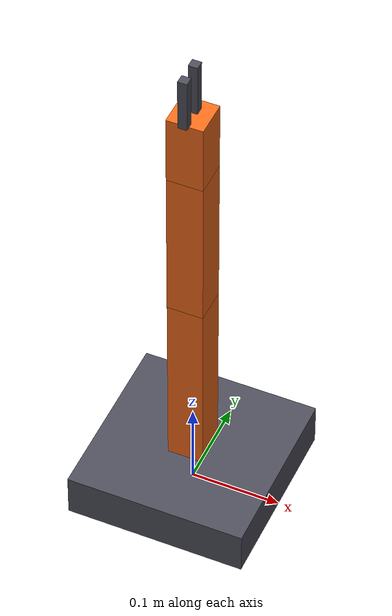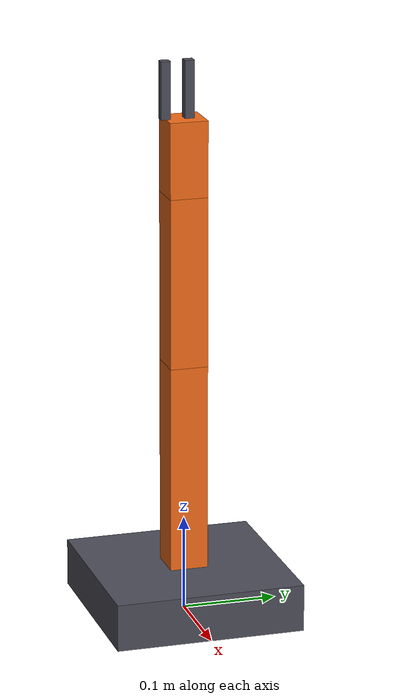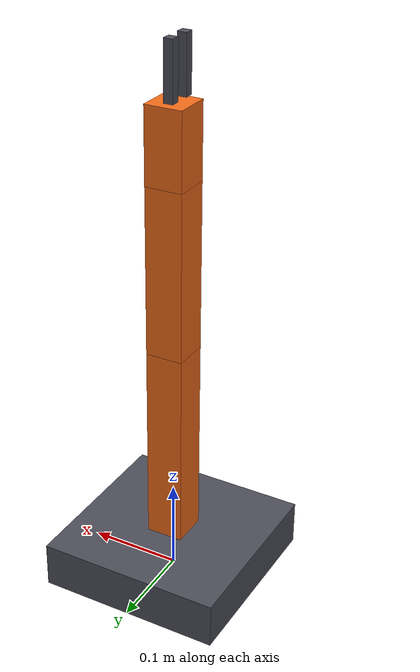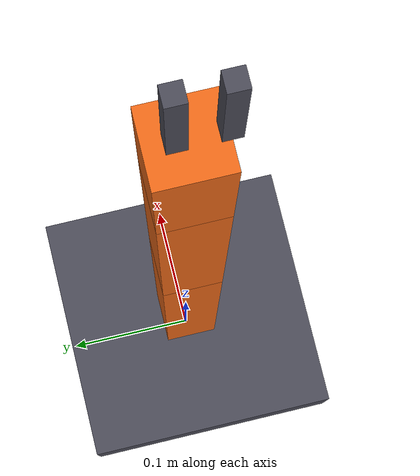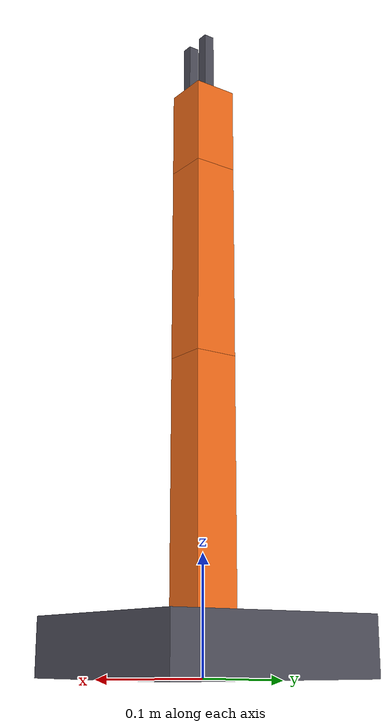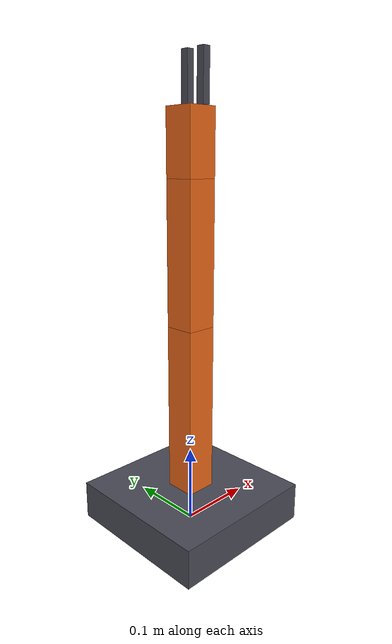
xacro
<?xml version="1.0"?>
<robot xmlns:xacro="http://www.ros.org/wiki/xacro" name="course_arm">
  <xacro:arg name="gripper" default="true"/>
  <material name="orange"><color rgba="0.95 0.42 0.10 1"/></material>
  <material name="grey"><color rgba="0.3 0.3 0.35 1"/></material>
  <xacro:macro name="segment" params="name length mass width:=0.04">
    <link name="${name}">
      <inertial><origin xyz="0 0 ${length/2}"/><mass value="${mass}"/>
        <inertia ixx="${mass*(width*width+length*length)/12}" ixy="0" ixz="0"
          iyy="${mass*(width*width+length*length)/12}" iyz="0" izz="${mass*width*width/6}"/>
      </inertial>
      <visual><origin xyz="0 0 ${length/2}"/><geometry><box size="${width} ${width} ${length}"/></geometry><material name="orange"/></visual>
      <collision><origin xyz="0 0 ${length/2}"/><geometry><box size="${width} ${width} ${length}"/></geometry></collision>
    </link>
  </xacro:macro>
  <xacro:macro name="actuator" params="joint">
    <transmission name="${joint}_transmission">
      <type>transmission_interface/SimpleTransmission</type>
      <joint name="${joint}"><hardwareInterface>hardware_interface/EffortJointInterface</hardwareInterface></joint>
      <actuator name="${joint}_motor"><hardwareInterface>hardware_interface/EffortJointInterface</hardwareInterface><mechanicalReduction>1</mechanicalReduction></actuator>
    </transmission>
  </xacro:macro>
  <link name="world"/>
  <link name="base_link">
    <inertial><mass value="2"/><inertia ixx="0.01" ixy="0" ixz="0" iyy="0.01" iyz="0" izz="0.01"/></inertial>
    <visual><origin xyz="0 0 0.025"/><geometry><box size="0.2 0.2 0.05"/></geometry><material name="grey"/></visual>
    <collision><origin xyz="0 0 0.025"/><geometry><box size="0.2 0.2 0.05"/></geometry></collision>
  </link>
  <joint name="world_fixed" type="fixed"><parent link="world"/><child link="base_link"/></joint>
  <xacro:segment name="upper_arm" length="0.22" mass="0.3"/>
  <xacro:segment name="forearm" length="0.18" mass="0.2"/>
  <xacro:segment name="wrist" length="0.08" mass="0.1"/>
  <joint name="shoulder_joint" type="revolute"><parent link="base_link"/><child link="upper_arm"/><origin xyz="0 0 0.05"/><axis xyz="0 1 0"/><limit lower="-1.2" upper="1.2" effort="8" velocity="1"/><dynamics damping="0.2" friction="0.01"/></joint>
  <joint name="elbow_joint" type="revolute"><parent link="upper_arm"/><child link="forearm"/><origin xyz="0 0 0.22"/><axis xyz="0 1 0"/><limit lower="-1.5" upper="1.5" effort="5" velocity="1"/><dynamics damping="0.15" friction="0.01"/></joint>
  <joint name="wrist_joint" type="revolute"><parent link="forearm"/><child link="wrist"/><origin xyz="0 0 0.18"/><axis xyz="0 0 1"/><limit lower="-1.5" upper="1.5" effort="3" velocity="1"/><dynamics damping="0.1" friction="0.01"/></joint>
  <xacro:actuator joint="shoulder_joint"/><xacro:actuator joint="elbow_joint"/><xacro:actuator joint="wrist_joint"/>
  <xacro:if value="$(arg gripper)">
    <link name="fixed_finger">
      <inertial><origin xyz="0 0 0.03"/><mass value="0.02"/><inertia ixx="0.00001" ixy="0" ixz="0" iyy="0.00001" iyz="0" izz="0.00001"/></inertial>
      <visual><geometry><mesh filename="package://course_arm/meshes/finger.stl"/></geometry><material name="grey"/></visual>
      <collision><origin xyz="0 0 0.03"/><geometry><box size="0.01 0.01 0.06"/></geometry></collision>
    </link>
    <link name="moving_finger">
      <inertial><origin xyz="0 0 0.03"/><mass value="0.02"/><inertia ixx="0.00001" ixy="0" ixz="0" iyy="0.00001" iyz="0" izz="0.00001"/></inertial>
      <visual><geometry><mesh filename="package://course_arm/meshes/finger.stl"/></geometry><material name="grey"/></visual>
      <collision><origin xyz="0 0 0.03"/><geometry><box size="0.01 0.01 0.06"/></geometry></collision>
    </link>
    <joint name="fixed_finger_joint" type="fixed"><parent link="wrist"/><child link="fixed_finger"/><origin xyz="0 -0.02 0.08"/></joint>
    <joint name="gripper_joint" type="prismatic"><parent link="wrist"/><child link="moving_finger"/><origin xyz="0 0.005 0.08"/><axis xyz="0 1 0"/><limit lower="0" upper="0.035" effort="3" velocity="0.1"/><dynamics damping="1"/></joint>
    <xacro:actuator joint="gripper_joint"/>
  </xacro:if>
  <gazebo><plugin name="ros_control" filename="libgazebo_ros_control.so"><robotNamespace>/arm</robotNamespace><robotParam>/robot_description</robotParam></plugin></gazebo>
</robot>
